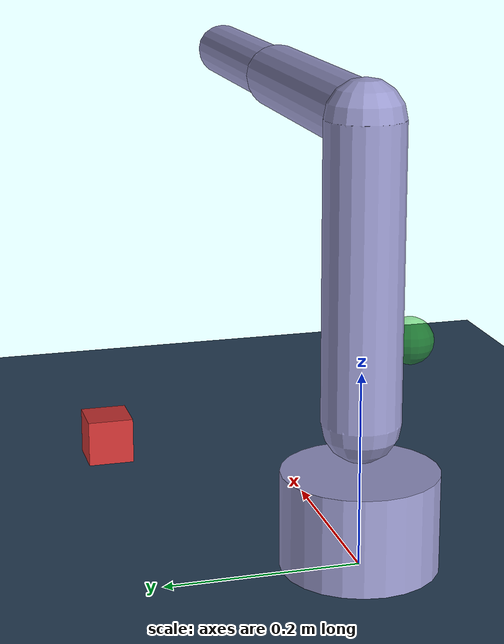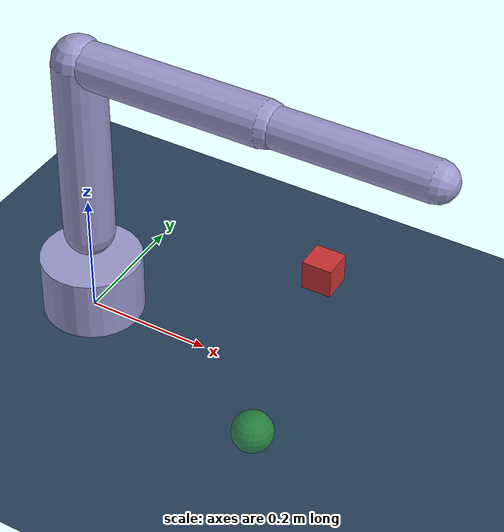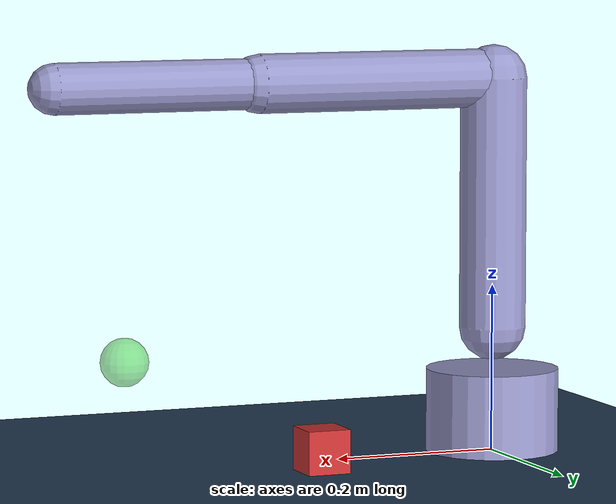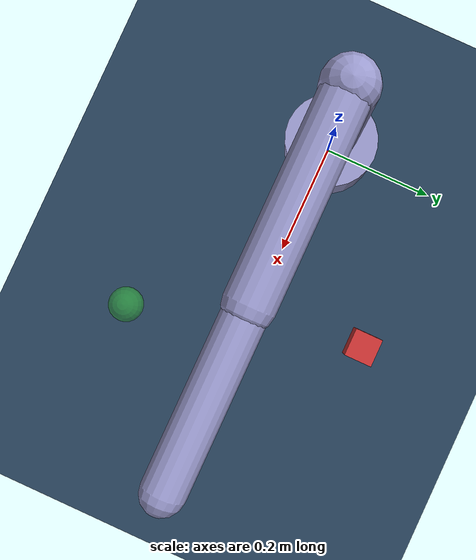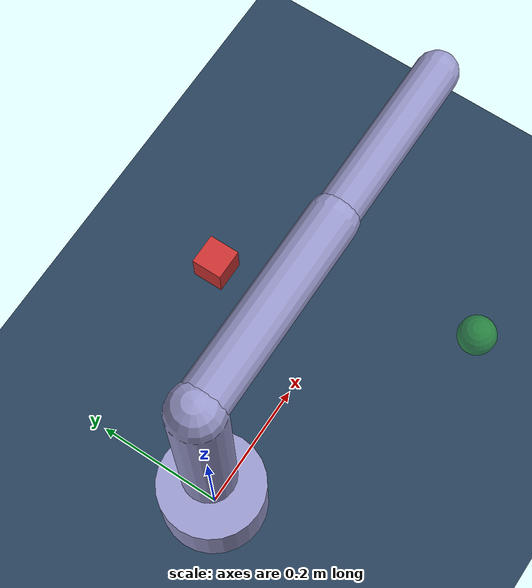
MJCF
<mujoco model="three_joint_arm">
  <option timestep="0.01" gravity="0 0 -9.81"/>

  <default>
    <joint damping="1.0" armature="0.1"/>
    <geom contype="1" conaffinity="1" friction="1 0.5 0.01"/>
  </default>

  <asset>
    <texture type="skybox" builtin="gradient" rgb1="0.3 0.5 0.7" rgb2="0 0 0" width="512" height="512"/>
    <texture name="floor_tex" type="2d" builtin="checker" rgb1="0.2 0.3 0.4" rgb2="0.1 0.2 0.3" width="512" height="512"/>
    <material name="floor_mat" texture="floor_tex" texrepeat="5 5" reflectance="0.2"/>
    <material name="arm_mat" rgba="0.6 0.6 0.8 1"/>
    <material name="object_mat" rgba="0.8 0.2 0.2 1"/>
    <material name="target_mat" rgba="0.2 0.8 0.2 0.5"/>
  </asset>

  <worldbody>
    <!-- Floor -->
    <geom name="floor" type="plane" size="2 2 0.1" material="floor_mat"/>

    <!-- Light -->
    <light name="light0" pos="0 0 3" dir="0 0 -1" diffuse="1 1 1" specular="0.3 0.3 0.3"/>

    <!-- Robot arm base (fixed to world, no free joint) -->
    <body name="base" pos="0 0 0.05">
      <geom name="base_geom" type="cylinder" size="0.08 0.05" material="arm_mat" mass="5"/>

      <!-- Link 1: rotates around Z axis (base rotation) -->
      <body name="link1" pos="0 0 0.1">
        <joint name="joint1" type="hinge" axis="0 0 1" range="-180 180"/>
        <geom name="link1_geom" type="capsule" fromto="0 0 0 0 0 0.3" size="0.04" material="arm_mat" mass="1"/>

        <!-- Link 2: rotates around Y axis (shoulder) -->
        <body name="link2" pos="0 0 0.3">
          <joint name="joint2" type="hinge" axis="0 1 0" range="-120 120"/>
          <geom name="link2_geom" type="capsule" fromto="0 0 0 0.3 0 0" size="0.035" material="arm_mat" mass="0.8"/>

          <!-- Link 3: rotates around Y axis (elbow) -->
          <body name="link3" pos="0.3 0 0">
            <joint name="joint3" type="hinge" axis="0 1 0" range="-120 120"/>
            <geom name="link3_geom" type="capsule" fromto="0 0 0 0.25 0 0" size="0.03" material="arm_mat" mass="0.5"/>

            <!-- End effector site -->
            <site name="end_effector" pos="0.25 0 0" size="0.02" rgba="1 1 0 1"/>
          </body>
        </body>
      </body>
    </body>

    <!-- Manipulable object (free joint for full 6DOF movement) -->
    <body name="object" pos="0.3 0.2 0.05">
      <joint name="object_joint" type="free"/>
      <geom name="object_geom" type="box" size="0.025 0.025 0.025" material="object_mat" mass="0.1"/>
    </body>

    <!-- Target position (visual only) -->
    <site name="target" pos="0.4 -0.2 0.1" size="0.03" rgba="0.2 0.8 0.2 0.5"/>
  </worldbody>

  <actuator>
    <motor name="motor1" joint="joint1" ctrlrange="-1 1" gear="150"/>
    <motor name="motor2" joint="joint2" ctrlrange="-1 1" gear="150"/>
    <motor name="motor3" joint="joint3" ctrlrange="-1 1" gear="150"/>
  </actuator>
</mujoco>
